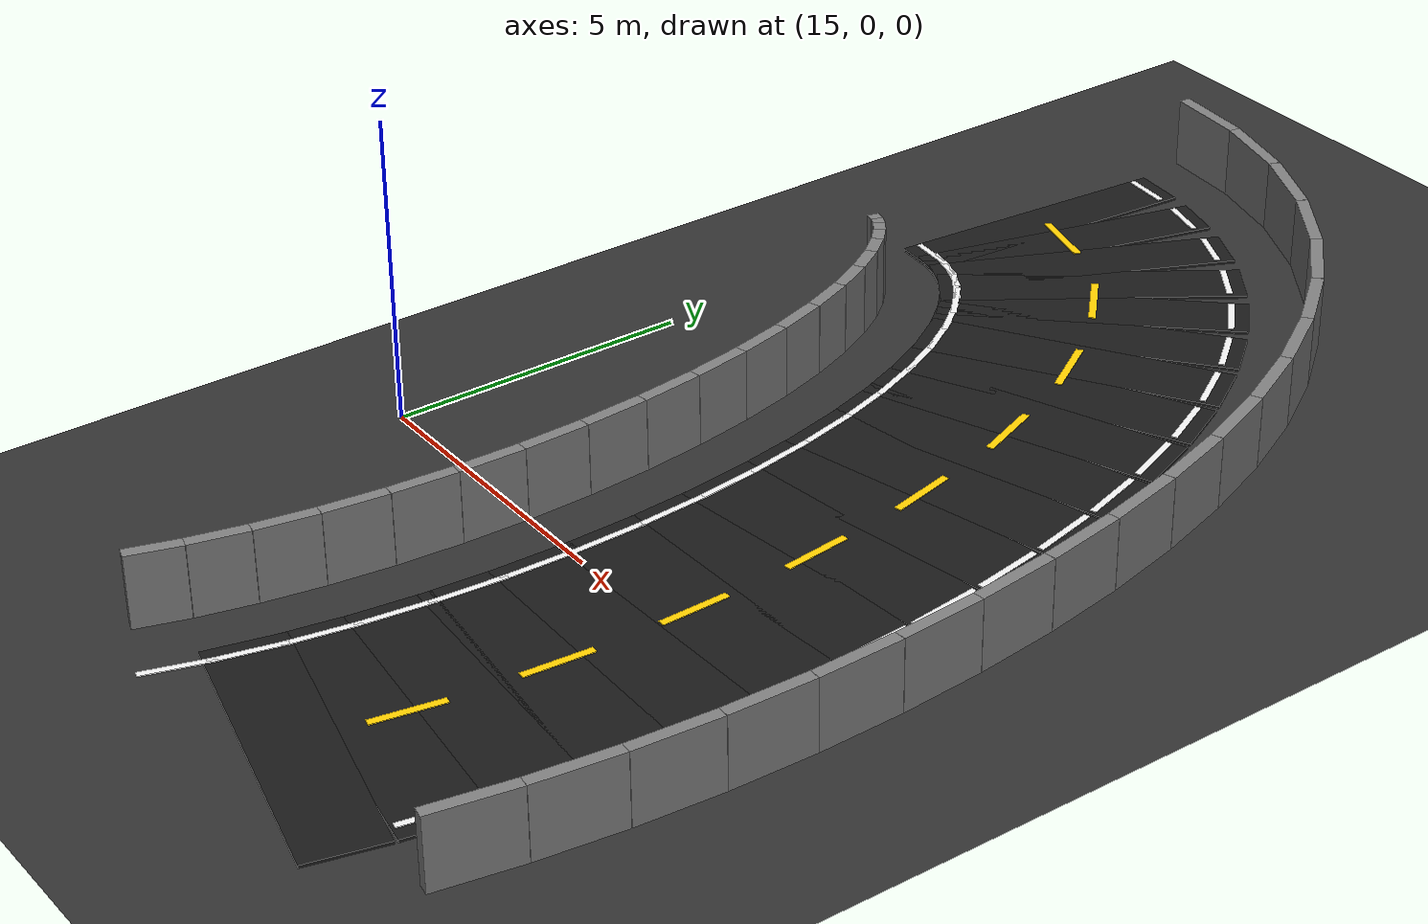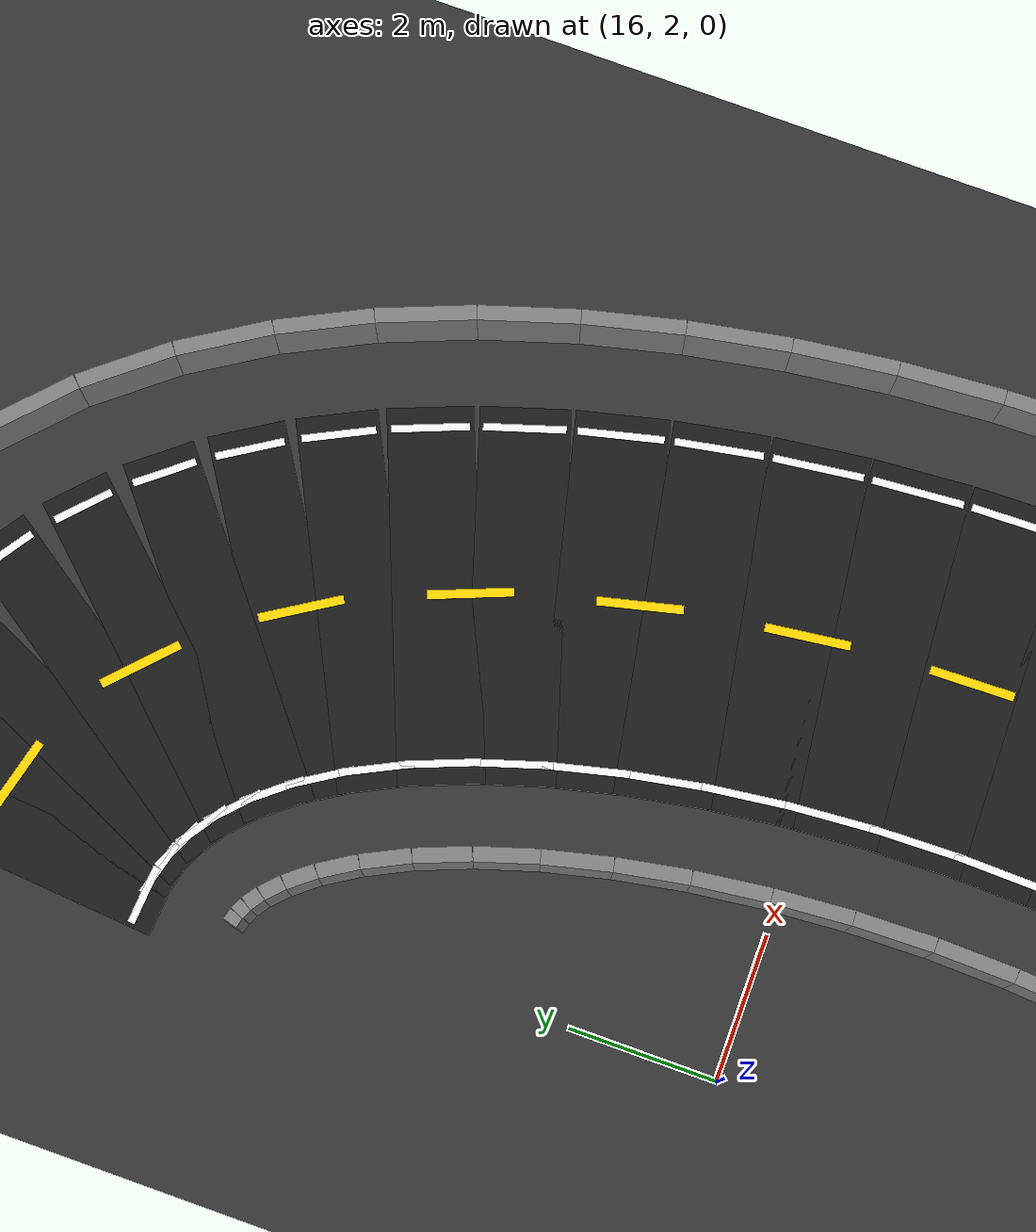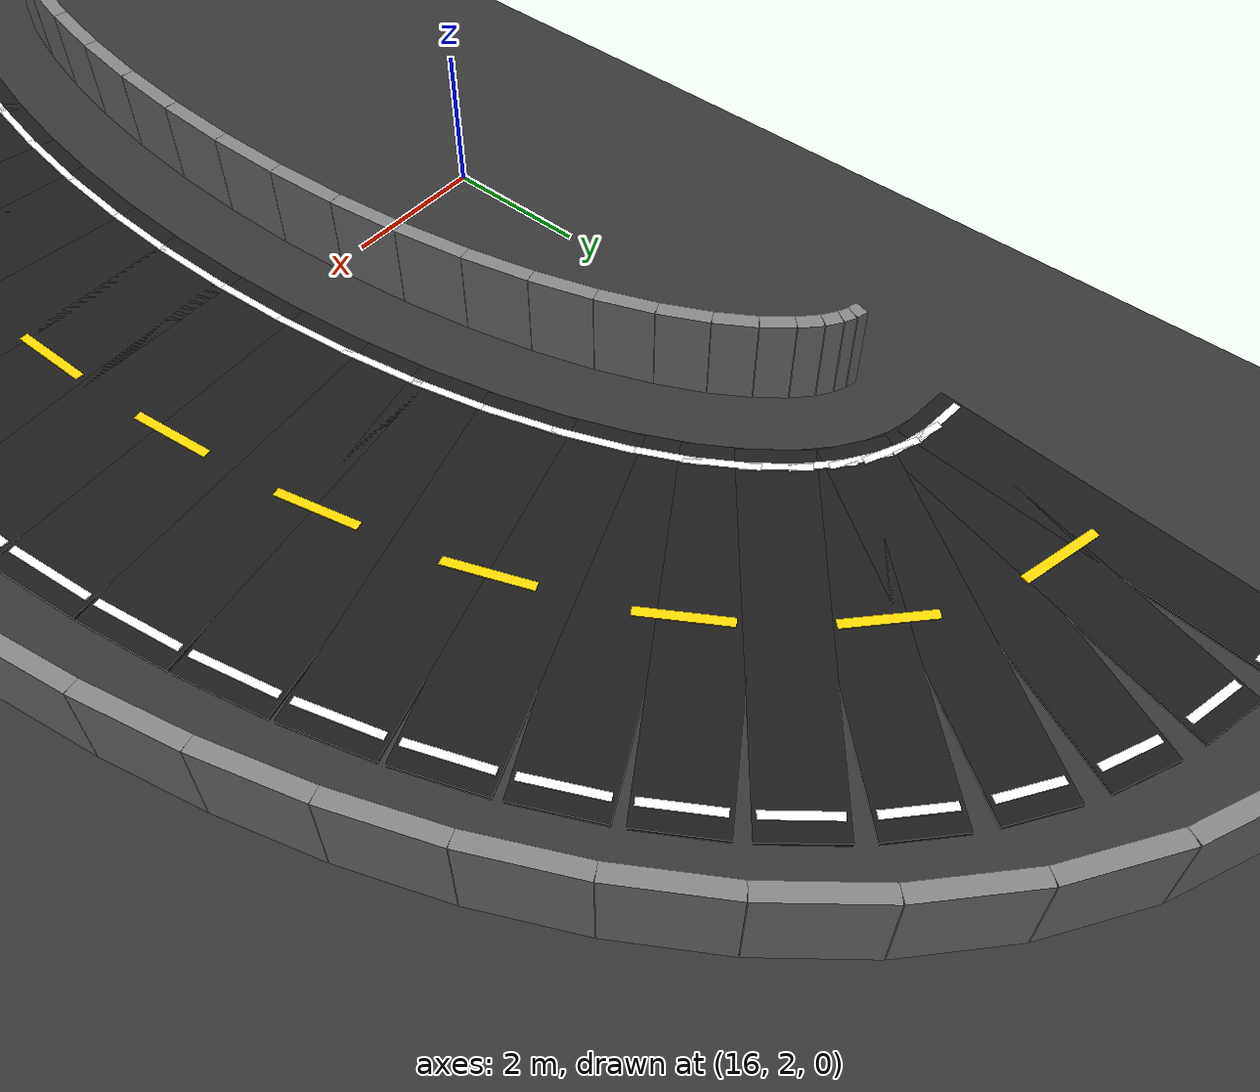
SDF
<sdf version="1.6">
 <world name="adas_figure8_circuit">
  <model name="ground">
   <static>true</static>
   <link name="link">
    <collision name="collision">
     <geometry><plane><normal>0 0 1</normal><size>80.0 80.0</size></plane></geometry>
    </collision>
    <visual name="visual">
     <geometry><plane><normal>0 0 1</normal><size>80.0 80.0</size></plane></geometry>
     <material><ambient>0.16 0.16 0.16 1</ambient><diffuse>0.20 0.20 0.20 1</diffuse></material>
    </visual>
   </link>
  </model>
  <model name="road_015">
   <static>true</static>
   <pose>15.9528 11.9671 0.025 0 0 -0.082725</pose>
   <link name="link">
    <collision name="collision"><geometry><box><size>0.8956 5.000 0.05</size></box></geometry></collision>
    <visual name="visual">
     <geometry><box><size>0.8956 5.000 0.05</size></box></geometry>
     <material><ambient>0.07 0.07 0.07 1</ambient><diffuse>0.10 0.10 0.10 1</diffuse></material>
    </visual>
   </link>
  </model>
  <model name="road_016">
   <static>true</static>
   <pose>16.7232 11.8360 0.025 0 0 -0.256877</pose>
   <link name="link">
    <collision name="collision"><geometry><box><size>0.8734 5.000 0.05</size></box></geometry></collision>
    <visual name="visual">
     <geometry><box><size>0.8734 5.000 0.05</size></box></geometry>
     <material><ambient>0.07 0.07 0.07 1</ambient><diffuse>0.10 0.10 0.10 1</diffuse></material>
    </visual>
   </link>
  </model>
  <model name="road_017">
   <static>true</static>
   <pose>17.4478 11.5752 0.025 0 0 -0.434146</pose>
   <link name="link">
    <collision name="collision"><geometry><box><size>0.8729 5.000 0.05</size></box></geometry></collision>
    <visual name="visual">
     <geometry><box><size>0.8729 5.000 0.05</size></box></geometry>
     <material><ambient>0.07 0.07 0.07 1</ambient><diffuse>0.10 0.10 0.10 1</diffuse></material>
    </visual>
   </link>
  </model>
  <model name="road_018">
   <static>true</static>
   <pose>18.1246 11.1876 0.025 0 0 -0.603974</pose>
   <link name="link">
    <collision name="collision"><geometry><box><size>0.8926 5.000 0.05</size></box></geometry></collision>
    <visual name="visual">
     <geometry><box><size>0.8926 5.000 0.05</size></box></geometry>
     <material><ambient>0.07 0.07 0.07 1</ambient><diffuse>0.10 0.10 0.10 1</diffuse></material>
    </visual>
   </link>
  </model>
  <model name="road_019">
   <static>true</static>
   <pose>18.7517 10.6774 0.025 0 0 -0.758473</pose>
   <link name="link">
    <collision name="collision"><geometry><box><size>0.9291 5.000 0.05</size></box></geometry></collision>
    <visual name="visual">
     <geometry><box><size>0.9291 5.000 0.05</size></box></geometry>
     <material><ambient>0.07 0.07 0.07 1</ambient><diffuse>0.10 0.10 0.10 1</diffuse></material>
    </visual>
   </link>
  </model>
  <model name="road_020">
   <static>true</static>
   <pose>19.3274 10.0503 0.025 0 0 -0.894005</pose>
   <link name="link">
    <collision name="collision"><geometry><box><size>0.9775 5.000 0.05</size></box></geometry></collision>
    <visual name="visual">
     <geometry><box><size>0.9775 5.000 0.05</size></box></geometry>
     <material><ambient>0.07 0.07 0.07 1</ambient><diffuse>0.10 0.10 0.10 1</diffuse></material>
    </visual>
   </link>
  </model>
  <model name="road_021">
   <static>true</static>
   <pose>19.8501 9.3130 0.025 0 0 -1.010547</pose>
   <link name="link">
    <collision name="collision"><geometry><box><size>1.0331 5.000 0.05</size></box></geometry></collision>
    <visual name="visual">
     <geometry><box><size>1.0331 5.000 0.05</size></box></geometry>
     <material><ambient>0.07 0.07 0.07 1</ambient><diffuse>0.10 0.10 0.10 1</diffuse></material>
    </visual>
   </link>
  </model>
  <model name="road_022">
   <static>true</static>
   <pose>20.3184 8.4737 0.025 0 0 -1.110140</pose>
   <link name="link">
    <collision name="collision"><geometry><box><size>1.0915 5.000 0.05</size></box></geometry></collision>
    <visual name="visual">
     <geometry><box><size>1.0915 5.000 0.05</size></box></geometry>
     <material><ambient>0.07 0.07 0.07 1</ambient><diffuse>0.10 0.10 0.10 1</diffuse></material>
    </visual>
   </link>
  </model>
  <model name="road_023">
   <static>true</static>
   <pose>20.7310 7.5415 0.025 0 0 -1.195586</pose>
   <link name="link">
    <collision name="collision"><geometry><box><size>1.1491 5.000 0.05</size></box></geometry></collision>
    <visual name="visual">
     <geometry><box><size>1.1491 5.000 0.05</size></box></geometry>
     <material><ambient>0.07 0.07 0.07 1</ambient><diffuse>0.10 0.10 0.10 1</diffuse></material>
    </visual>
   </link>
  </model>
  <model name="road_024">
   <static>true</static>
   <pose>21.0868 6.5267 0.025 0 0 -1.269703</pose>
   <link name="link">
    <collision name="collision"><geometry><box><size>1.2030 5.000 0.05</size></box></geometry></collision>
    <visual name="visual">
     <geometry><box><size>1.2030 5.000 0.05</size></box></geometry>
     <material><ambient>0.07 0.07 0.07 1</ambient><diffuse>0.10 0.10 0.10 1</diffuse></material>
    </visual>
   </link>
  </model>
  <model name="road_025">
   <static>true</static>
   <pose>21.3848 5.4404 0.025 0 0 -1.335014</pose>
   <link name="link">
    <collision name="collision"><geometry><box><size>1.2510 5.000 0.05</size></box></geometry></collision>
    <visual name="visual">
     <geometry><box><size>1.2510 5.000 0.05</size></box></geometry>
     <material><ambient>0.07 0.07 0.07 1</ambient><diffuse>0.10 0.10 0.10 1</diffuse></material>
    </visual>
   </link>
  </model>
  <model name="road_026">
   <static>true</static>
   <pose>21.6242 4.2945 0.025 0 0 -1.393677</pose>
   <link name="link">
    <collision name="collision"><geometry><box><size>1.2913 5.000 0.05</size></box></geometry></collision>
    <visual name="visual">
     <geometry><box><size>1.2913 5.000 0.05</size></box></geometry>
     <material><ambient>0.07 0.07 0.07 1</ambient><diffuse>0.10 0.10 0.10 1</diffuse></material>
    </visual>
   </link>
  </model>
  <model name="road_027">
   <static>true</static>
   <pose>21.8043 3.1016 0.025 0 0 -1.447513</pose>
   <link name="link">
    <collision name="collision"><geometry><box><size>1.3225 5.000 0.05</size></box></geometry></collision>
    <visual name="visual">
     <geometry><box><size>1.3225 5.000 0.05</size></box></geometry>
     <material><ambient>0.07 0.07 0.07 1</ambient><diffuse>0.10 0.10 0.10 1</diffuse></material>
    </visual>
   </link>
  </model>
  <model name="road_028">
   <static>true</static>
   <pose>21.9247 1.8746 0.025 0 0 -1.498082</pose>
   <link name="link">
    <collision name="collision"><geometry><box><size>1.3439 5.000 0.05</size></box></geometry></collision>
    <visual name="visual">
     <geometry><box><size>1.3439 5.000 0.05</size></box></geometry>
     <material><ambient>0.07 0.07 0.07 1</ambient><diffuse>0.10 0.10 0.10 1</diffuse></material>
    </visual>
   </link>
  </model>
  <model name="road_029">
   <static>true</static>
   <pose>21.9849 0.6272 0.025 0 0 -1.546764</pose>
   <link name="link">
    <collision name="collision"><geometry><box><size>1.3547 5.000 0.05</size></box></geometry></collision>
    <visual name="visual">
     <geometry><box><size>1.3547 5.000 0.05</size></box></geometry>
     <material><ambient>0.07 0.07 0.07 1</ambient><diffuse>0.10 0.10 0.10 1</diffuse></material>
    </visual>
   </link>
  </model>
  <model name="road_030">
   <static>true</static>
   <pose>21.9849 -0.6272 0.025 0 0 -1.594828</pose>
   <link name="link">
    <collision name="collision"><geometry><box><size>1.3547 5.000 0.05</size></box></geometry></collision>
    <visual name="visual">
     <geometry><box><size>1.3547 5.000 0.05</size></box></geometry>
     <material><ambient>0.07 0.07 0.07 1</ambient><diffuse>0.10 0.10 0.10 1</diffuse></material>
    </visual>
   </link>
  </model>
  <model name="road_031">
   <static>true</static>
   <pose>21.9247 -1.8746 0.025 0 0 -1.643510</pose>
   <link name="link">
    <collision name="collision"><geometry><box><size>1.3439 5.000 0.05</size></box></geometry></collision>
    <visual name="visual">
     <geometry><box><size>1.3439 5.000 0.05</size></box></geometry>
     <material><ambient>0.07 0.07 0.07 1</ambient><diffuse>0.10 0.10 0.10 1</diffuse></material>
    </visual>
   </link>
  </model>
  <model name="road_032">
   <static>true</static>
   <pose>21.8043 -3.1016 0.025 0 0 -1.694080</pose>
   <link name="link">
    <collision name="collision"><geometry><box><size>1.3225 5.000 0.05</size></box></geometry></collision>
    <visual name="visual">
     <geometry><box><size>1.3225 5.000 0.05</size></box></geometry>
     <material><ambient>0.07 0.07 0.07 1</ambient><diffuse>0.10 0.10 0.10 1</diffuse></material>
    </visual>
   </link>
  </model>
  <model name="road_033">
   <static>true</static>
   <pose>21.6242 -4.2945 0.025 0 0 -1.747916</pose>
   <link name="link">
    <collision name="collision"><geometry><box><size>1.2913 5.000 0.05</size></box></geometry></collision>
    <visual name="visual">
     <geometry><box><size>1.2913 5.000 0.05</size></box></geometry>
     <material><ambient>0.07 0.07 0.07 1</ambient><diffuse>0.10 0.10 0.10 1</diffuse></material>
    </visual>
   </link>
  </model>
  <model name="road_034">
   <static>true</static>
   <pose>21.3848 -5.4404 0.025 0 0 -1.806578</pose>
   <link name="link">
    <collision name="collision"><geometry><box><size>1.2510 5.000 0.05</size></box></geometry></collision>
    <visual name="visual">
     <geometry><box><size>1.2510 5.000 0.05</size></box></geometry>
     <material><ambient>0.07 0.07 0.07 1</ambient><diffuse>0.10 0.10 0.10 1</diffuse></material>
    </visual>
   </link>
  </model>
  <model name="center_dash_009">
   <static>true</static>
   <pose>16.6187 11.8635 0.058 0 0 -0.256877</pose>
   <link name="link">
    <visual name="visual">
     <geometry><box><size>1.150 0.12 0.02</size></box></geometry>
     <material><ambient>1 0.82 0 1</ambient><diffuse>1 0.82 0 1</diffuse></material>
    </visual>
   </link>
  </model>
  <model name="center_dash_010">
   <static>true</static>
   <pose>18.5705 10.8491 0.058 0 0 -0.758473</pose>
   <link name="link">
    <visual name="visual">
     <geometry><box><size>1.150 0.12 0.02</size></box></geometry>
     <material><ambient>1 0.82 0 1</ambient><diffuse>1 0.82 0 1</diffuse></material>
    </visual>
   </link>
  </model>
  <model name="center_dash_011">
   <static>true</static>
   <pose>19.9653 9.1292 0.058 0 0 -1.010547</pose>
   <link name="link">
    <visual name="visual">
     <geometry><box><size>1.150 0.12 0.02</size></box></geometry>
     <material><ambient>1 0.82 0 1</ambient><diffuse>1 0.82 0 1</diffuse></material>
    </visual>
   </link>
  </model>
  <model name="center_dash_012">
   <static>true</static>
   <pose>20.8994 7.1141 0.058 0 0 -1.195586</pose>
   <link name="link">
    <visual name="visual">
     <geometry><box><size>1.150 0.12 0.02</size></box></geometry>
     <material><ambient>1 0.82 0 1</ambient><diffuse>1 0.82 0 1</diffuse></material>
    </visual>
   </link>
  </model>
  <model name="center_dash_013">
   <static>true</static>
   <pose>21.4973 4.9724 0.058 0 0 -1.335014</pose>
   <link name="link">
    <visual name="visual">
     <geometry><box><size>1.150 0.12 0.02</size></box></geometry>
     <material><ambient>1 0.82 0 1</ambient><diffuse>1 0.82 0 1</diffuse></material>
    </visual>
   </link>
  </model>
  <model name="center_dash_014">
   <static>true</static>
   <pose>21.8447 2.7756 0.058 0 0 -1.447513</pose>
   <link name="link">
    <visual name="visual">
     <geometry><box><size>1.150 0.12 0.02</size></box></geometry>
     <material><ambient>1 0.82 0 1</ambient><diffuse>1 0.82 0 1</diffuse></material>
    </visual>
   </link>
  </model>
  <model name="center_dash_015">
   <static>true</static>
   <pose>21.9866 0.5561 0.058 0 0 -1.546764</pose>
   <link name="link">
    <visual name="visual">
     <geometry><box><size>1.150 0.12 0.02</size></box></geometry>
     <material><ambient>1 0.82 0 1</ambient><diffuse>1 0.82 0 1</diffuse></material>
    </visual>
   </link>
  </model>
  <model name="center_dash_016">
   <static>true</static>
   <pose>21.9398 -1.6674 0.058 0 0 -1.643510</pose>
   <link name="link">
    <visual name="visual">
     <geometry><box><size>1.150 0.12 0.02</size></box></geometry>
     <material><ambient>1 0.82 0 1</ambient><diffuse>1 0.82 0 1</diffuse></material>
    </visual>
   </link>
  </model>
  <model name="center_dash_017">
   <static>true</static>
   <pose>21.6987 -3.8783 0.058 0 0 -1.747916</pose>
   <link name="link">
    <visual name="visual">
     <geometry><box><size>1.150 0.12 0.02</size></box></geometry>
     <material><ambient>1 0.82 0 1</ambient><diffuse>1 0.82 0 1</diffuse></material>
    </visual>
   </link>
  </model>
  <model name="edge_left_015">
   <static>true</static>
   <pose>16.1362 14.1795 0.058 0 0 -0.082725</pose>
   <link name="link">
    <visual name="visual">
     <geometry><box><size>0.7956 0.10 0.02</size></box></geometry>
     <material><ambient>0.95 0.95 0.95 1</ambient><diffuse>0.95 0.95 0.95 1</diffuse></material>
    </visual>
   </link>
  </model>
  <model name="edge_left_016">
   <static>true</static>
   <pose>17.2872 13.9832 0.058 0 0 -0.256877</pose>
   <link name="link">
    <visual name="visual">
     <geometry><box><size>0.7734 0.10 0.02</size></box></geometry>
     <material><ambient>0.95 0.95 0.95 1</ambient><diffuse>0.95 0.95 0.95 1</diffuse></material>
    </visual>
   </link>
  </model>
  <model name="edge_left_017">
   <static>true</static>
   <pose>18.3816 13.5893 0.058 0 0 -0.434146</pose>
   <link name="link">
    <visual name="visual">
     <geometry><box><size>0.7729 0.10 0.02</size></box></geometry>
     <material><ambient>0.95 0.95 0.95 1</ambient><diffuse>0.95 0.95 0.95 1</diffuse></material>
    </visual>
   </link>
  </model>
  <model name="edge_left_018">
   <static>true</static>
   <pose>19.3853 13.0149 0.058 0 0 -0.603974</pose>
   <link name="link">
    <visual name="visual">
     <geometry><box><size>0.7926 0.10 0.02</size></box></geometry>
     <material><ambient>0.95 0.95 0.95 1</ambient><diffuse>0.95 0.95 0.95 1</diffuse></material>
    </visual>
   </link>
  </model>
  <model name="edge_left_019">
   <static>true</static>
   <pose>20.2786 12.2889 0.058 0 0 -0.758473</pose>
   <link name="link">
    <visual name="visual">
     <geometry><box><size>0.8291 0.10 0.02</size></box></geometry>
     <material><ambient>0.95 0.95 0.95 1</ambient><diffuse>0.95 0.95 0.95 1</diffuse></material>
    </visual>
   </link>
  </model>
  <model name="edge_left_020">
   <static>true</static>
   <pose>21.0580 11.4406 0.058 0 0 -0.894005</pose>
   <link name="link">
    <visual name="visual">
     <geometry><box><size>0.8775 0.10 0.02</size></box></geometry>
     <material><ambient>0.95 0.95 0.95 1</ambient><diffuse>0.95 0.95 0.95 1</diffuse></material>
    </visual>
   </link>
  </model>
  <model name="edge_left_021">
   <static>true</static>
   <pose>21.7307 10.4927 0.058 0 0 -1.010547</pose>
   <link name="link">
    <visual name="visual">
     <geometry><box><size>0.9331 0.10 0.02</size></box></geometry>
     <material><ambient>0.95 0.95 0.95 1</ambient><diffuse>0.95 0.95 0.95 1</diffuse></material>
    </visual>
   </link>
  </model>
  <model name="edge_left_022">
   <static>true</static>
   <pose>22.3070 9.4605 0.058 0 0 -1.110140</pose>
   <link name="link">
    <visual name="visual">
     <geometry><box><size>0.9915 0.10 0.02</size></box></geometry>
     <material><ambient>0.95 0.95 0.95 1</ambient><diffuse>0.95 0.95 0.95 1</diffuse></material>
    </visual>
   </link>
  </model>
  <model name="edge_left_023">
   <static>true</static>
   <pose>22.7966 8.3551 0.058 0 0 -1.195586</pose>
   <link name="link">
    <visual name="visual">
     <geometry><box><size>1.0491 0.10 0.02</size></box></geometry>
     <material><ambient>0.95 0.95 0.95 1</ambient><diffuse>0.95 0.95 0.95 1</diffuse></material>
    </visual>
   </link>
  </model>
  <model name="edge_left_024">
   <static>true</static>
   <pose>23.2069 7.1851 0.058 0 0 -1.269703</pose>
   <link name="link">
    <visual name="visual">
     <geometry><box><size>1.1030 0.10 0.02</size></box></geometry>
     <material><ambient>0.95 0.95 0.95 1</ambient><diffuse>0.95 0.95 0.95 1</diffuse></material>
    </visual>
   </link>
  </model>
  <model name="edge_left_025">
   <static>true</static>
   <pose>23.5434 5.9590 0.058 0 0 -1.335014</pose>
   <link name="link">
    <visual name="visual">
     <geometry><box><size>1.1510 0.10 0.02</size></box></geometry>
     <material><ambient>0.95 0.95 0.95 1</ambient><diffuse>0.95 0.95 0.95 1</diffuse></material>
    </visual>
   </link>
  </model>
  <model name="edge_left_026">
   <static>true</static>
   <pose>23.8095 4.6857 0.058 0 0 -1.393677</pose>
   <link name="link">
    <visual name="visual">
     <geometry><box><size>1.1913 0.10 0.02</size></box></geometry>
     <material><ambient>0.95 0.95 0.95 1</ambient><diffuse>0.95 0.95 0.95 1</diffuse></material>
    </visual>
   </link>
  </model>
  <model name="edge_left_027">
   <static>true</static>
   <pose>24.0075 3.3746 0.058 0 0 -1.447513</pose>
   <link name="link">
    <visual name="visual">
     <geometry><box><size>1.2225 0.10 0.02</size></box></geometry>
     <material><ambient>0.95 0.95 0.95 1</ambient><diffuse>0.95 0.95 0.95 1</diffuse></material>
    </visual>
   </link>
  </model>
  <model name="edge_left_028">
   <static>true</static>
   <pose>24.1388 2.0359 0.058 0 0 -1.498082</pose>
   <link name="link">
    <visual name="visual">
     <geometry><box><size>1.2439 0.10 0.02</size></box></geometry>
     <material><ambient>0.95 0.95 0.95 1</ambient><diffuse>0.95 0.95 0.95 1</diffuse></material>
    </visual>
   </link>
  </model>
  <model name="edge_left_029">
   <static>true</static>
   <pose>24.2043 0.6805 0.058 0 0 -1.546764</pose>
   <link name="link">
    <visual name="visual">
     <geometry><box><size>1.2547 0.10 0.02</size></box></geometry>
     <material><ambient>0.95 0.95 0.95 1</ambient><diffuse>0.95 0.95 0.95 1</diffuse></material>
    </visual>
   </link>
  </model>
  <model name="edge_left_030">
   <static>true</static>
   <pose>24.2043 -0.6805 0.058 0 0 -1.594828</pose>
   <link name="link">
    <visual name="visual">
     <geometry><box><size>1.2547 0.10 0.02</size></box></geometry>
     <material><ambient>0.95 0.95 0.95 1</ambient><diffuse>0.95 0.95 0.95 1</diffuse></material>
    </visual>
   </link>
  </model>
  <model name="edge_left_031">
   <static>true</static>
   <pose>24.1388 -2.0359 0.058 0 0 -1.643510</pose>
   <link name="link">
    <visual name="visual">
     <geometry><box><size>1.2439 0.10 0.02</size></box></geometry>
     <material><ambient>0.95 0.95 0.95 1</ambient><diffuse>0.95 0.95 0.95 1</diffuse></material>
    </visual>
   </link>
  </model>
  <model name="edge_left_032">
   <static>true</static>
   <pose>24.0075 -3.3746 0.058 0 0 -1.694080</pose>
   <link name="link">
    <visual name="visual">
     <geometry><box><size>1.2225 0.10 0.02</size></box></geometry>
     <material><ambient>0.95 0.95 0.95 1</ambient><diffuse>0.95 0.95 0.95 1</diffuse></material>
    </visual>
   </link>
  </model>
  <model name="edge_left_033">
   <static>true</static>
   <pose>23.8095 -4.6857 0.058 0 0 -1.747916</pose>
   <link name="link">
    <visual name="visual">
     <geometry><box><size>1.1913 0.10 0.02</size></box></geometry>
     <material><ambient>0.95 0.95 0.95 1</ambient><diffuse>0.95 0.95 0.95 1</diffuse></material>
    </visual>
   </link>
  </model>
  <model name="edge_right_015">
   <static>true</static>
   <pose>15.7693 9.7547 0.058 0 0 -0.082725</pose>
   <link name="link">
    <visual name="visual">
     <geometry><box><size>0.7956 0.10 0.02</size></box></geometry>
     <material><ambient>0.95 0.95 0.95 1</ambient><diffuse>0.95 0.95 0.95 1</diffuse></material>
    </visual>
   </link>
  </model>
  <model name="edge_right_016">
   <static>true</static>
   <pose>16.1592 9.6889 0.058 0 0 -0.256877</pose>
   <link name="link">
    <visual name="visual">
     <geometry><box><size>0.7734 0.10 0.02</size></box></geometry>
     <material><ambient>0.95 0.95 0.95 1</ambient><diffuse>0.95 0.95 0.95 1</diffuse></material>
    </visual>
   </link>
  </model>
  <model name="edge_right_017">
   <static>true</static>
   <pose>16.5140 9.5612 0.058 0 0 -0.434146</pose>
   <link name="link">
    <visual name="visual">
     <geometry><box><size>0.7729 0.10 0.02</size></box></geometry>
     <material><ambient>0.95 0.95 0.95 1</ambient><diffuse>0.95 0.95 0.95 1</diffuse></material>
    </visual>
   </link>
  </model>
  <model name="edge_right_018">
   <static>true</static>
   <pose>16.8638 9.3604 0.058 0 0 -0.603974</pose>
   <link name="link">
    <visual name="visual">
     <geometry><box><size>0.7926 0.10 0.02</size></box></geometry>
     <material><ambient>0.95 0.95 0.95 1</ambient><diffuse>0.95 0.95 0.95 1</diffuse></material>
    </visual>
   </link>
  </model>
  <model name="edge_right_019">
   <static>true</static>
   <pose>17.2247 9.0660 0.058 0 0 -0.758473</pose>
   <link name="link">
    <visual name="visual">
     <geometry><box><size>0.8291 0.10 0.02</size></box></geometry>
     <material><ambient>0.95 0.95 0.95 1</ambient><diffuse>0.95 0.95 0.95 1</diffuse></material>
    </visual>
   </link>
  </model>
  <model name="edge_right_020">
   <static>true</static>
   <pose>17.5967 8.6599 0.058 0 0 -0.894005</pose>
   <link name="link">
    <visual name="visual">
     <geometry><box><size>0.8775 0.10 0.02</size></box></geometry>
     <material><ambient>0.95 0.95 0.95 1</ambient><diffuse>0.95 0.95 0.95 1</diffuse></material>
    </visual>
   </link>
  </model>
  <model name="edge_right_021">
   <static>true</static>
   <pose>17.9695 8.1333 0.058 0 0 -1.010547</pose>
   <link name="link">
    <visual name="visual">
     <geometry><box><size>0.9331 0.10 0.02</size></box></geometry>
     <material><ambient>0.95 0.95 0.95 1</ambient><diffuse>0.95 0.95 0.95 1</diffuse></material>
    </visual>
   </link>
  </model>
  <model name="edge_right_022">
   <static>true</static>
   <pose>18.3298 7.4868 0.058 0 0 -1.110140</pose>
   <link name="link">
    <visual name="visual">
     <geometry><box><size>0.9915 0.10 0.02</size></box></geometry>
     <material><ambient>0.95 0.95 0.95 1</ambient><diffuse>0.95 0.95 0.95 1</diffuse></material>
    </visual>
   </link>
  </model>
  <model name="edge_right_023">
   <static>true</static>
   <pose>18.6655 6.7279 0.058 0 0 -1.195586</pose>
   <link name="link">
    <visual name="visual">
     <geometry><box><size>1.0491 0.10 0.02</size></box></geometry>
     <material><ambient>0.95 0.95 0.95 1</ambient><diffuse>0.95 0.95 0.95 1</diffuse></material>
    </visual>
   </link>
  </model>
  <model name="edge_right_024">
   <static>true</static>
   <pose>18.9667 5.8683 0.058 0 0 -1.269703</pose>
   <link name="link">
    <visual name="visual">
     <geometry><box><size>1.1030 0.10 0.02</size></box></geometry>
     <material><ambient>0.95 0.95 0.95 1</ambient><diffuse>0.95 0.95 0.95 1</diffuse></material>
    </visual>
   </link>
  </model>
  <model name="edge_right_025">
   <static>true</static>
   <pose>19.2262 4.9218 0.058 0 0 -1.335014</pose>
   <link name="link">
    <visual name="visual">
     <geometry><box><size>1.1510 0.10 0.02</size></box></geometry>
     <material><ambient>0.95 0.95 0.95 1</ambient><diffuse>0.95 0.95 0.95 1</diffuse></material>
    </visual>
   </link>
  </model>
  <model name="edge_right_026">
   <static>true</static>
   <pose>19.4389 3.9034 0.058 0 0 -1.393677</pose>
   <link name="link">
    <visual name="visual">
     <geometry><box><size>1.1913 0.10 0.02</size></box></geometry>
     <material><ambient>0.95 0.95 0.95 1</ambient><diffuse>0.95 0.95 0.95 1</diffuse></material>
    </visual>
   </link>
  </model>
  <model name="edge_right_027">
   <static>true</static>
   <pose>19.6012 2.8286 0.058 0 0 -1.447513</pose>
   <link name="link">
    <visual name="visual">
     <geometry><box><size>1.2225 0.10 0.02</size></box></geometry>
     <material><ambient>0.95 0.95 0.95 1</ambient><diffuse>0.95 0.95 0.95 1</diffuse></material>
    </visual>
   </link>
  </model>
  <model name="edge_right_028">
   <static>true</static>
   <pose>19.7105 1.7134 0.058 0 0 -1.498082</pose>
   <link name="link">
    <visual name="visual">
     <geometry><box><size>1.2439 0.10 0.02</size></box></geometry>
     <material><ambient>0.95 0.95 0.95 1</ambient><diffuse>0.95 0.95 0.95 1</diffuse></material>
    </visual>
   </link>
  </model>
  <model name="edge_right_029">
   <static>true</static>
   <pose>19.7656 0.5738 0.058 0 0 -1.546764</pose>
   <link name="link">
    <visual name="visual">
     <geometry><box><size>1.2547 0.10 0.02</size></box></geometry>
     <material><ambient>0.95 0.95 0.95 1</ambient><diffuse>0.95 0.95 0.95 1</diffuse></material>
    </visual>
   </link>
  </model>
  <model name="edge_right_030">
   <static>true</static>
   <pose>19.7656 -0.5738 0.058 0 0 -1.594828</pose>
   <link name="link">
    <visual name="visual">
     <geometry><box><size>1.2547 0.10 0.02</size></box></geometry>
     <material><ambient>0.95 0.95 0.95 1</ambient><diffuse>0.95 0.95 0.95 1</diffuse></material>
    </visual>
   </link>
  </model>
  <model name="edge_right_031">
   <static>true</static>
   <pose>19.7105 -1.7134 0.058 0 0 -1.643510</pose>
   <link name="link">
    <visual name="visual">
     <geometry><box><size>1.2439 0.10 0.02</size></box></geometry>
     <material><ambient>0.95 0.95 0.95 1</ambient><diffuse>0.95 0.95 0.95 1</diffuse></material>
    </visual>
   </link>
  </model>
  <model name="edge_right_032">
   <static>true</static>
   <pose>19.6012 -2.8286 0.058 0 0 -1.694080</pose>
   <link name="link">
    <visual name="visual">
     <geometry><box><size>1.2225 0.10 0.02</size></box></geometry>
     <material><ambient>0.95 0.95 0.95 1</ambient><diffuse>0.95 0.95 0.95 1</diffuse></material>
    </visual>
   </link>
  </model>
  <model name="edge_right_033">
   <static>true</static>
   <pose>19.4389 -3.9034 0.058 0 0 -1.747916</pose>
   <link name="link">
    <visual name="visual">
     <geometry><box><size>1.1913 0.10 0.02</size></box></geometry>
     <material><ambient>0.95 0.95 0.95 1</ambient><diffuse>0.95 0.95 0.95 1</diffuse></material>
    </visual>
   </link>
  </model>
  <model name="edge_right_034">
   <static>true</static>
   <pose>19.2262 -4.9218 0.058 0 0 -1.806578</pose>
   <link name="link">
    <visual name="visual">
     <geometry><box><size>1.1510 0.10 0.02</size></box></geometry>
     <material><ambient>0.95 0.95 0.95 1</ambient><diffuse>0.95 0.95 0.95 1</diffuse></material>
    </visual>
   </link>
  </model>
  <model name="edge_right_035">
   <static>true</static>
   <pose>18.9667 -5.8683 0.058 0 0 -1.871890</pose>
   <link name="link">
    <visual name="visual">
     <geometry><box><size>1.1030 0.10 0.02</size></box></geometry>
     <material><ambient>0.95 0.95 0.95 1</ambient><diffuse>0.95 0.95 0.95 1</diffuse></material>
    </visual>
   </link>
  </model>
  <model name="slam_barrier_left_015">
   <static>true</static>
   <pose>16.2468 15.4423 0.6000
        0 0 -0.083437</pose>
   <link name="link">
    <collision name="collision">
     <geometry><box><size>1.3856
                0.2000
                1.2000</size></box></geometry>
    </collision>
    <visual name="visual">
     <geometry><box><size>1.3856
                0.2000
                1.2000</size></box></geometry>
     <material><ambient>0.4 0.4 0.4 1</ambient><diffuse>0.5 0.5 0.5 1</diffuse></material>
    </visual>
   </link>
  </model>
  <model name="slam_barrier_left_016">
   <static>true</static>
   <pose>17.6105 15.2075 0.6000
        0 0 -0.257090</pose>
   <link name="link">
    <collision name="collision">
     <geometry><box><size>1.3925
                0.2000
                1.2000</size></box></geometry>
    </collision>
    <visual name="visual">
     <geometry><box><size>1.3925
                0.2000
                1.2000</size></box></geometry>
     <material><ambient>0.4 0.4 0.4 1</ambient><diffuse>0.5 0.5 0.5 1</diffuse></material>
    </visual>
   </link>
  </model>
  <model name="slam_barrier_right_016">
   <static>true</static>
   <pose>15.8359 8.4645 0.6000
        0 0 -0.254954</pose>
   <link name="link">
    <collision name="collision">
     <geometry><box><size>0.1543
                0.2000
                1.2000</size></box></geometry>
    </collision>
    <visual name="visual">
     <geometry><box><size>0.1543
                0.2000
                1.2000</size></box></geometry>
     <material><ambient>0.4 0.4 0.4 1</ambient><diffuse>0.5 0.5 0.5 1</diffuse></material>
    </visual>
   </link>
  </model>
  <model name="slam_barrier_left_017">
   <static>true</static>
   <pose>18.9118 14.7396 0.6000
        0 0 -0.433782</pose>
   <link name="link">
    <collision name="collision">
     <geometry><box><size>1.3839
                0.2000
                1.2000</size></box></geometry>
    </collision>
    <visual name="visual">
     <geometry><box><size>1.3839
                0.2000
                1.2000</size></box></geometry>
     <material><ambient>0.4 0.4 0.4 1</ambient><diffuse>0.5 0.5 0.5 1</diffuse></material>
    </visual>
   </link>
  </model>
  <model name="slam_barrier_right_017">
   <static>true</static>
   <pose>15.9838 8.4108 0.6000
        0 0 -0.437259</pose>
   <link name="link">
    <collision name="collision">
     <geometry><box><size>0.1618
                0.2000
                1.2000</size></box></geometry>
    </collision>
    <visual name="visual">
     <geometry><box><size>0.1618
                0.2000
                1.2000</size></box></geometry>
     <material><ambient>0.4 0.4 0.4 1</ambient><diffuse>0.5 0.5 0.5 1</diffuse></material>
    </visual>
   </link>
  </model>
  <model name="slam_barrier_left_018">
   <static>true</static>
   <pose>20.1005 14.0624 0.6000
        0 0 -0.603224</pose>
   <link name="link">
    <collision name="collision">
     <geometry><box><size>1.3622
                0.2000
                1.2000</size></box></geometry>
    </collision>
    <visual name="visual">
     <geometry><box><size>1.3622
                0.2000
                1.2000</size></box></geometry>
     <material><ambient>0.4 0.4 0.4 1</ambient><diffuse>0.5 0.5 0.5 1</diffuse></material>
    </visual>
   </link>
  </model>
  <model name="slam_barrier_right_018">
   <static>true</static>
   <pose>16.1486 8.3128 0.6000
        0 0 -0.608555</pose>
   <link name="link">
    <collision name="collision">
     <geometry><box><size>0.2230
                0.2000
                1.2000</size></box></geometry>
    </collision>
    <visual name="visual">
     <geometry><box><size>0.2230
                0.2000
                1.2000</size></box></geometry>
     <material><ambient>0.4 0.4 0.4 1</ambient><diffuse>0.5 0.5 0.5 1</diffuse></material>
    </visual>
   </link>
  </model>
  <model name="slam_barrier_left_019">
   <static>true</static>
   <pose>21.1470 13.2167 0.6000
        0 0 -0.757625</pose>
   <link name="link">
    <collision name="collision">
     <geometry><box><size>1.3369
                0.2000
                1.2000</size></box></geometry>
    </collision>
    <visual name="visual">
     <geometry><box><size>1.3369
                0.2000
                1.2000</size></box></geometry>
     <material><ambient>0.4 0.4 0.4 1</ambient><diffuse>0.5 0.5 0.5 1</diffuse></material>
    </visual>
   </link>
  </model>
  <model name="slam_barrier_right_019">
   <static>true</static>
   <pose>16.3563 8.1382 0.6000
        0 0 -0.761998</pose>
   <link name="link">
    <collision name="collision">
     <geometry><box><size>0.3213
                0.2000
                1.2000</size></box></geometry>
    </collision>
    <visual name="visual">
     <geometry><box><size>0.3213
                0.2000
                1.2000</size></box></geometry>
     <material><ambient>0.4 0.4 0.4 1</ambient><diffuse>0.5 0.5 0.5 1</diffuse></material>
    </visual>
   </link>
  </model>
  <model name="slam_barrier_left_020">
   <static>true</static>
   <pose>22.0456 12.2440 0.6000
        0 0 -0.893262</pose>
   <link name="link">
    <collision name="collision">
     <geometry><box><size>1.3178
                0.2000
                1.2000</size></box></geometry>
    </collision>
    <visual name="visual">
     <geometry><box><size>1.3178
                0.2000
                1.2000</size></box></geometry>
     <material><ambient>0.4 0.4 0.4 1</ambient><diffuse>0.5 0.5 0.5 1</diffuse></material>
    </visual>
   </link>
  </model>
  <model name="slam_barrier_right_020">
   <static>true</static>
   <pose>16.6091 7.8565 0.6000
        0 0 -0.896244</pose>
   <link name="link">
    <collision name="collision">
     <geometry><box><size>0.4373
                0.2000
                1.2000</size></box></geometry>
    </collision>
    <visual name="visual">
     <geometry><box><size>0.4373
                0.2000
                1.2000</size></box></geometry>
     <material><ambient>0.4 0.4 0.4 1</ambient><diffuse>0.5 0.5 0.5 1</diffuse></material>
    </visual>
   </link>
  </model>
  <model name="slam_barrier_left_021">
   <static>true</static>
   <pose>22.8070 11.1760 0.6000
        0 0 -1.009981</pose>
   <link name="link">
    <collision name="collision">
     <geometry><box><size>1.3100
                0.2000
                1.2000</size></box></geometry>
    </collision>
    <visual name="visual">
     <geometry><box><size>1.3100
                0.2000
                1.2000</size></box></geometry>
     <material><ambient>0.4 0.4 0.4 1</ambient><diffuse>0.5 0.5 0.5 1</diffuse></material>
    </visual>
   </link>
  </model>
  <model name="slam_barrier_right_021">
   <static>true</static>
   <pose>16.8931 7.4499 0.6000
        0 0 -1.011882</pose>
   <link name="link">
    <collision name="collision">
     <geometry><box><size>0.5563
                0.2000
                1.2000</size></box></geometry>
    </collision>
    <visual name="visual">
     <geometry><box><size>0.5563
                0.2000
                1.2000</size></box></geometry>
     <material><ambient>0.4 0.4 0.4 1</ambient><diffuse>0.5 0.5 0.5 1</diffuse></material>
    </visual>
   </link>
  </model>
  <model name="slam_barrier_left_022">
   <static>true</static>
   <pose>23.4477 10.0330 0.6000
        0 0 -1.109740</pose>
   <link name="link">
    <collision name="collision">
     <geometry><box><size>1.3139
                0.2000
                1.2000</size></box></geometry>
    </collision>
    <visual name="visual">
     <geometry><box><size>1.3139
                0.2000
                1.2000</size></box></geometry>
     <material><ambient>0.4 0.4 0.4 1</ambient><diffuse>0.5 0.5 0.5 1</diffuse></material>
    </visual>
   </link>
  </model>
  <model name="slam_barrier_right_022">
   <static>true</static>
   <pose>17.1891 6.9143 0.6000
        0 0 -1.110926</pose>
   <link name="link">
    <collision name="collision">
     <geometry><box><size>0.6692
                0.2000
                1.2000</size></box></geometry>
    </collision>
    <visual name="visual">
     <geometry><box><size>0.6692
                0.2000
                1.2000</size></box></geometry>
     <material><ambient>0.4 0.4 0.4 1</ambient><diffuse>0.5 0.5 0.5 1</diffuse></material>
    </visual>
   </link>
  </model>
  <model name="slam_barrier_left_023">
   <static>true</static>
   <pose>23.9833 8.8273 0.6000
        0 0 -1.195314</pose>
   <link name="link">
    <collision name="collision">
     <geometry><box><size>1.3270
                0.2000
                1.2000</size></box></geometry>
    </collision>
    <visual name="visual">
     <geometry><box><size>1.3270
                0.2000
                1.2000</size></box></geometry>
     <material><ambient>0.4 0.4 0.4 1</ambient><diffuse>0.5 0.5 0.5 1</diffuse></material>
    </visual>
   </link>
  </model>
  <model name="slam_barrier_right_023">
   <static>true</static>
   <pose>17.4787 6.2556 0.6000
        0 0 -1.196053</pose>
   <link name="link">
    <collision name="collision">
     <geometry><box><size>0.7712
                0.2000
                1.2000</size></box></geometry>
    </collision>
    <visual name="visual">
     <geometry><box><size>0.7712
                0.2000
                1.2000</size></box></geometry>
     <material><ambient>0.4 0.4 0.4 1</ambient><diffuse>0.5 0.5 0.5 1</diffuse></material>
    </visual>
   </link>
  </model>
  <model name="slam_barrier_left_024">
   <static>true</static>
   <pose>24.4263 7.5674 0.6000
        0 0 -1.269522</pose>
   <link name="link">
    <collision name="collision">
     <geometry><box><size>1.3459
                0.2000
                1.2000</size></box></geometry>
    </collision>
    <visual name="visual">
     <geometry><box><size>1.3459
                0.2000
                1.2000</size></box></geometry>
     <material><ambient>0.4 0.4 0.4 1</ambient><diffuse>0.5 0.5 0.5 1</diffuse></material>
    </visual>
   </link>
  </model>
  <model name="slam_barrier_right_024">
   <static>true</static>
   <pose>17.7473 5.4860 0.6000
        0 0 -1.269985</pose>
   <link name="link">
    <collision name="collision">
     <geometry><box><size>0.8602
                0.2000
                1.2000</size></box></geometry>
    </collision>
    <visual name="visual">
     <geometry><box><size>0.8602
                0.2000
                1.2000</size></box></geometry>
     <material><ambient>0.4 0.4 0.4 1</ambient><diffuse>0.5 0.5 0.5 1</diffuse></material>
    </visual>
   </link>
  </model>
  <model name="slam_barrier_left_025">
   <static>true</static>
   <pose>24.7857 6.2602 0.6000
        0 0 -1.334896</pose>
   <link name="link">
    <collision name="collision">
     <geometry><box><size>1.3670
                0.2000
                1.2000</size></box></geometry>
    </collision>
    <visual name="visual">
     <geometry><box><size>1.3670
                0.2000
                1.2000</size></box></geometry>
     <material><ambient>0.4 0.4 0.4 1</ambient><diffuse>0.5 0.5 0.5 1</diffuse></material>
    </visual>
   </link>
  </model>
  <model name="slam_barrier_right_025">
   <static>true</static>
   <pose>17.9839 4.6206 0.6000
        0 0 -1.335188</pose>
   <link name="link">
    <collision name="collision">
     <geometry><box><size>0.9350
                0.2000
                1.2000</size></box></geometry>
    </collision>
    <visual name="visual">
     <geometry><box><size>0.9350
                0.2000
                1.2000</size></box></geometry>
     <material><ambient>0.4 0.4 0.4 1</ambient><diffuse>0.5 0.5 0.5 1</diffuse></material>
    </visual>
   </link>
  </model>
  <model name="slam_barrier_left_026">
   <static>true</static>
   <pose>25.0678 4.9128 0.6000
        0 0 -1.393600</pose>
   <link name="link">
    <collision name="collision">
     <geometry><box><size>1.3873
                0.2000
                1.2000</size></box></geometry>
    </collision>
    <visual name="visual">
     <geometry><box><size>1.3873
                0.2000
                1.2000</size></box></geometry>
     <material><ambient>0.4 0.4 0.4 1</ambient><diffuse>0.5 0.5 0.5 1</diffuse></material>
    </visual>
   </link>
  </model>
  <model name="slam_barrier_right_026">
   <static>true</static>
   <pose>18.1806 3.6762 0.6000
        0 0 -1.393783</pose>
   <link name="link">
    <collision name="collision">
     <geometry><box><size>0.9952
                0.2000
                1.2000</size></box></geometry>
    </collision>
    <visual name="visual">
     <geometry><box><size>0.9952
                0.2000
                1.2000</size></box></geometry>
     <material><ambient>0.4 0.4 0.4 1</ambient><diffuse>0.5 0.5 0.5 1</diffuse></material>
    </visual>
   </link>
  </model>
  <model name="slam_barrier_left_027">
   <static>true</static>
   <pose>25.2764 3.5331 0.6000
        0 0 -1.447465</pose>
   <link name="link">
    <collision name="collision">
     <geometry><box><size>1.4045
                0.2000
                1.2000</size></box></geometry>
    </collision>
    <visual name="visual">
     <geometry><box><size>1.4045
                0.2000
                1.2000</size></box></geometry>
     <material><ambient>0.4 0.4 0.4 1</ambient><diffuse>0.5 0.5 0.5 1</diffuse></material>
    </visual>
   </link>
  </model>
  <model name="slam_barrier_right_027">
   <static>true</static>
   <pose>18.3322 2.6700 0.6000
        0 0 -1.447576</pose>
   <link name="link">
    <collision name="collision">
     <geometry><box><size>1.0405
                0.2000
                1.2000</size></box></geometry>
    </collision>
    <visual name="visual">
     <geometry><box><size>1.0405
                0.2000
                1.2000</size></box></geometry>
     <material><ambient>0.4 0.4 0.4 1</ambient><diffuse>0.5 0.5 0.5 1</diffuse></material>
    </visual>
   </link>
  </model>
  <model name="slam_barrier_left_028">
   <static>true</static>
   <pose>25.4143 2.1296 0.6000
        0 0 -1.498057</pose>
   <link name="link">
    <collision name="collision">
     <geometry><box><size>1.4169
                0.2000
                1.2000</size></box></geometry>
    </collision>
    <visual name="visual">
     <geometry><box><size>1.4169
                0.2000
                1.2000</size></box></geometry>
     <material><ambient>0.4 0.4 0.4 1</ambient><diffuse>0.5 0.5 0.5 1</diffuse></material>
    </visual>
   </link>
  </model>
  <model name="slam_barrier_right_028">
   <static>true</static>
   <pose>18.4350 1.6197 0.6000
        0 0 -1.498116</pose>
   <link name="link">
    <collision name="collision">
     <geometry><box><size>1.0708
                0.2000
                1.2000</size></box></geometry>
    </collision>
    <visual name="visual">
     <geometry><box><size>1.0708
                0.2000
                1.2000</size></box></geometry>
     <material><ambient>0.4 0.4 0.4 1</ambient><diffuse>0.5 0.5 0.5 1</diffuse></material>
    </visual>
   </link>
  </model>
  <model name="slam_barrier_left_029">
   <static>true</static>
   <pose>25.4829 0.7115 0.6000
        0 0 -1.546756</pose>
   <link name="link">
    <collision name="collision">
     <geometry><box><size>1.4234
                0.2000
                1.2000</size></box></geometry>
    </collision>
    <visual name="visual">
     <geometry><box><size>1.4234
                0.2000
                1.2000</size></box></geometry>
     <material><ambient>0.4 0.4 0.4 1</ambient><diffuse>0.5 0.5 0.5 1</diffuse></material>
    </visual>
   </link>
  </model>
  <model name="slam_barrier_right_029">
   <static>true</static>
   <pose>18.4870 0.5429 0.6000
        0 0 -1.546775</pose>
   <link name="link">
    <collision name="collision">
     <geometry><box><size>1.0860
                0.2000
                1.2000</size></box></geometry>
    </collision>
    <visual name="visual">
     <geometry><box><size>1.0860
                0.2000
                1.2000</size></box></geometry>
     <material><ambient>0.4 0.4 0.4 1</ambient><diffuse>0.5 0.5 0.5 1</diffuse></material>
    </visual>
   </link>
  </model>
  <model name="slam_barrier_left_030">
   <static>true</static>
   <pose>25.4829 -0.7115 0.6000
        0 0 -1.594837</pose>
   <link name="link">
    <collision name="collision">
     <geometry><box><size>1.4234
                0.2000
                1.2000</size></box></geometry>
    </collision>
    <visual name="visual">
     <geometry><box><size>1.4234
                0.2000
                1.2000</size></box></geometry>
     <material><ambient>0.4 0.4 0.4 1</ambient><diffuse>0.5 0.5 0.5 1</diffuse></material>
    </visual>
   </link>
  </model>
  <model name="slam_barrier_right_030">
   <static>true</static>
   <pose>18.4870 -0.5429 0.6000
        0 0 -1.594818</pose>
   <link name="link">
    <collision name="collision">
     <geometry><box><size>1.0860
                0.2000
                1.2000</size></box></geometry>
    </collision>
    <visual name="visual">
     <geometry><box><size>1.0860
                0.2000
                1.2000</size></box></geometry>
     <material><ambient>0.4 0.4 0.4 1</ambient><diffuse>0.5 0.5 0.5 1</diffuse></material>
    </visual>
   </link>
  </model>
  <model name="slam_barrier_left_031">
   <static>true</static>
   <pose>25.4143 -2.1296 0.6000
        0 0 -1.643536</pose>
   <link name="link">
    <collision name="collision">
     <geometry><box><size>1.4169
                0.2000
                1.2000</size></box></geometry>
    </collision>
    <visual name="visual">
     <geometry><box><size>1.4169
                0.2000
                1.2000</size></box></geometry>
     <material><ambient>0.4 0.4 0.4 1</ambient><diffuse>0.5 0.5 0.5 1</diffuse></material>
    </visual>
   </link>
  </model>
  <model name="slam_barrier_right_031">
   <static>true</static>
   <pose>18.4350 -1.6197 0.6000
        0 0 -1.643476</pose>
   <link name="link">
    <collision name="collision">
     <geometry><box><size>1.0708
                0.2000
                1.2000</size></box></geometry>
    </collision>
    <visual name="visual">
     <geometry><box><size>1.0708
                0.2000
                1.2000</size></box></geometry>
     <material><ambient>0.4 0.4 0.4 1</ambient><diffuse>0.5 0.5 0.5 1</diffuse></material>
    </visual>
   </link>
  </model>
  <model name="slam_barrier_left_032">
   <static>true</static>
   <pose>25.2764 -3.5331 0.6000
        0 0 -1.694127</pose>
   <link name="link">
    <collision name="collision">
     <geometry><box><size>1.4045
                0.2000
                1.2000</size></box></geometry>
    </collision>
    <visual name="visual">
     <geometry><box><size>1.4045
                0.2000
                1.2000</size></box></geometry>
     <material><ambient>0.4 0.4 0.4 1</ambient><diffuse>0.5 0.5 0.5 1</diffuse></material>
    </visual>
   </link>
  </model>
  <model name="slam_barrier_right_032">
   <static>true</static>
   <pose>18.3322 -2.6700 0.6000
        0 0 -1.694016</pose>
   <link name="link">
    <collision name="collision">
     <geometry><box><size>1.0405
                0.2000
                1.2000</size></box></geometry>
    </collision>
    <visual name="visual">
     <geometry><box><size>1.0405
                0.2000
                1.2000</size></box></geometry>
     <material><ambient>0.4 0.4 0.4 1</ambient><diffuse>0.5 0.5 0.5 1</diffuse></material>
    </visual>
   </link>
  </model>
  <model name="slam_barrier_left_033">
   <static>true</static>
   <pose>25.0678 -4.9128 0.6000
        0 0 -1.747992</pose>
   <link name="link">
    <collision name="collision">
     <geometry><box><size>1.3873
                0.2000
                1.2000</size></box></geometry>
    </collision>
    <visual name="visual">
     <geometry><box><size>1.3873
                0.2000
                1.2000</size></box></geometry>
     <material><ambient>0.4 0.4 0.4 1</ambient><diffuse>0.5 0.5 0.5 1</diffuse></material>
    </visual>
   </link>
  </model>
  <model name="slam_barrier_right_033">
   <static>true</static>
   <pose>18.1806 -3.6762 0.6000
        0 0 -1.747809</pose>
   <link name="link">
    <collision name="collision">
     <geometry><box><size>0.9952
                0.2000
                1.2000</size></box></geometry>
    </collision>
    <visual name="visual">
     <geometry><box><size>0.9952
                0.2000
                1.2000</size></box></geometry>
     <material><ambient>0.4 0.4 0.4 1</ambient><diffuse>0.5 0.5 0.5 1</diffuse></material>
    </visual>
   </link>
  </model>
  <model name="slam_barrier_right_034">
   <static>true</static>
   <pose>17.9839 -4.6206 0.6000
        0 0 -1.806405</pose>
   <link name="link">
    <collision name="collision">
     <geometry><box><size>0.9350
                0.2000
                1.2000</size></box></geometry>
    </collision>
    <visual name="visual">
     <geometry><box><size>0.9350
                0.2000
                1.2000</size></box></geometry>
     <material><ambient>0.4 0.4 0.4 1</ambient><diffuse>0.5 0.5 0.5 1</diffuse></material>
    </visual>
   </link>
  </model>
  <model name="slam_barrier_right_035">
   <static>true</static>
   <pose>17.7473 -5.4860 0.6000
        0 0 -1.871608</pose>
   <link name="link">
    <collision name="collision">
     <geometry><box><size>0.8602
                0.2000
                1.2000</size></box></geometry>
    </collision>
    <visual name="visual">
     <geometry><box><size>0.8602
                0.2000
                1.2000</size></box></geometry>
     <material><ambient>0.4 0.4 0.4 1</ambient><diffuse>0.5 0.5 0.5 1</diffuse></material>
    </visual>
   </link>
  </model>
 </world>
</sdf>
